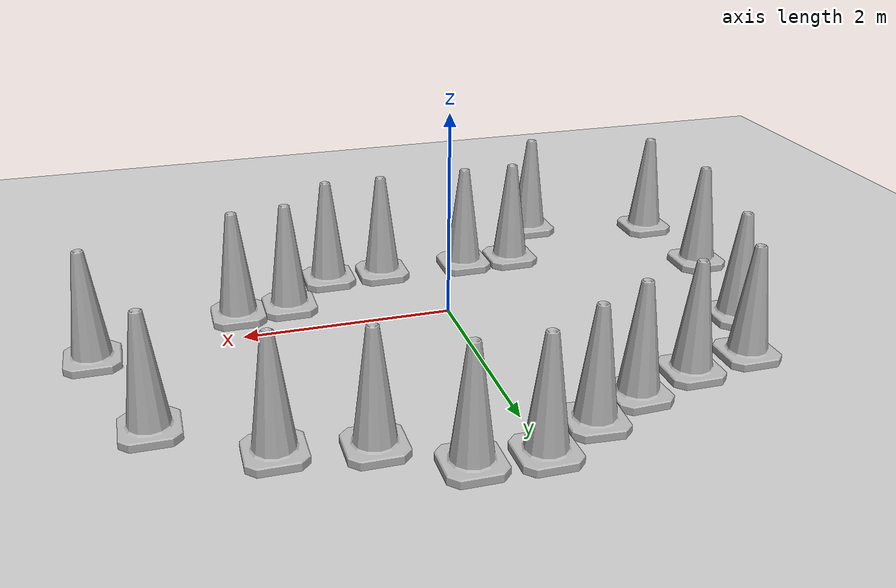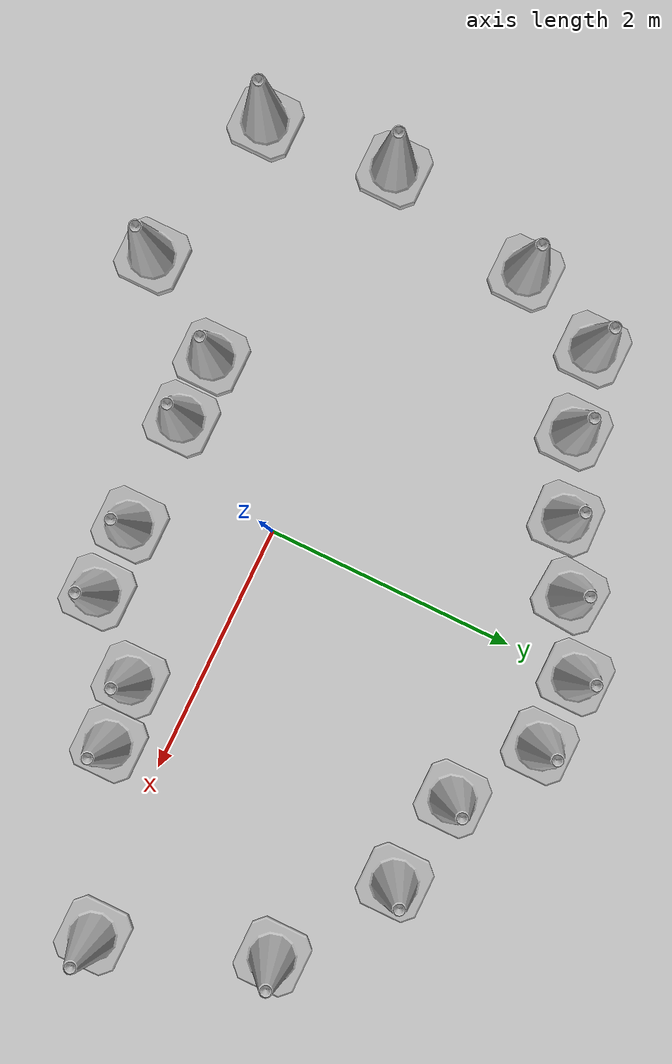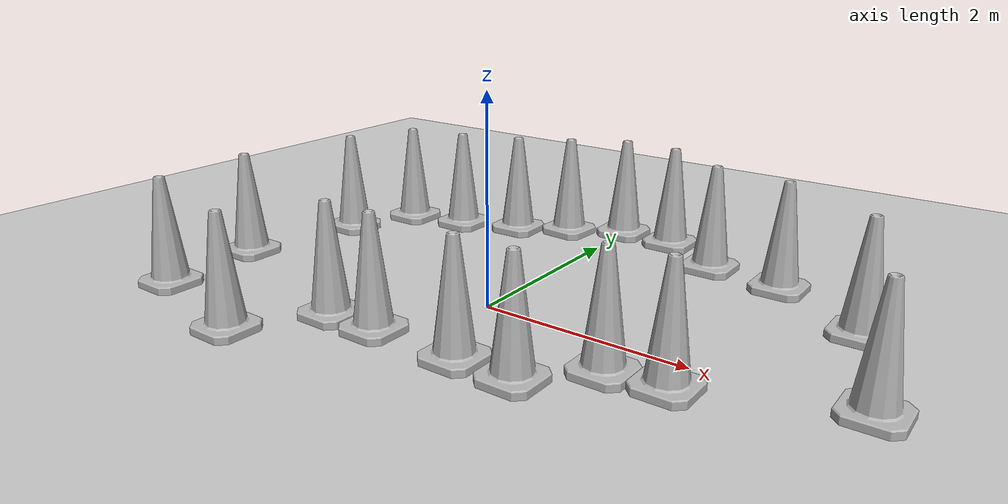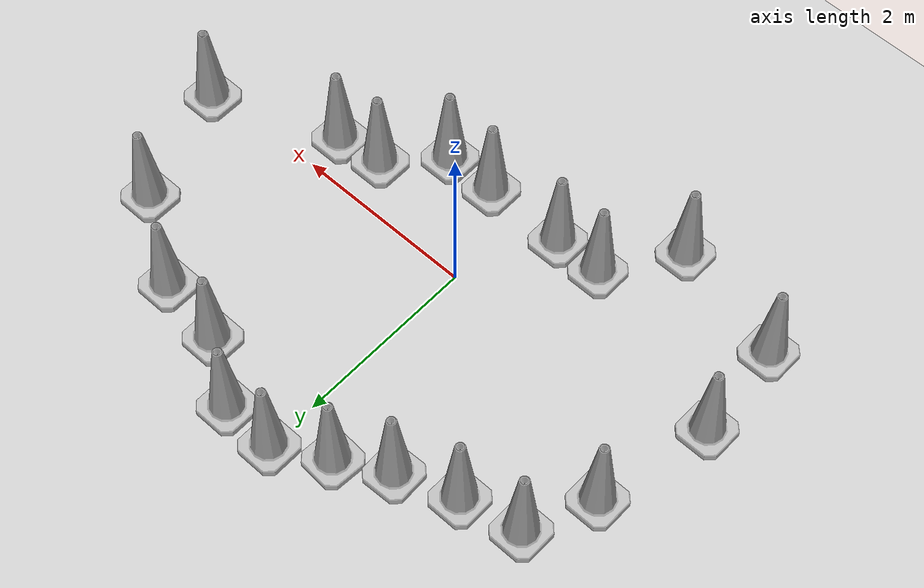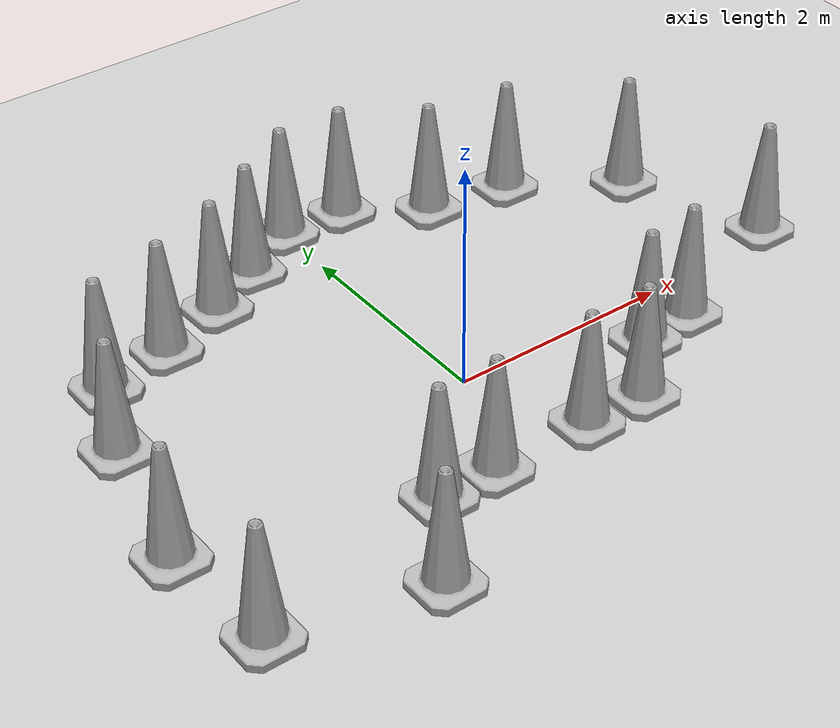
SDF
<sdf version="1.7">
 <world name="default">
  <light name="sun" type="directional">
   <pose>0 0 10 0 -0 0</pose>
   <diffuse>0.8 0.8 0.8 1</diffuse>
   <specular>0.2 0.2 0.2 1</specular>
   <attenuation>
    <range>1000</range>
    <constant>0.9</constant>
    <linear>0.01</linear>
    <quadratic>0.001</quadratic>
   </attenuation>
   <direction>-0.5 0.1 -0.9</direction>
   <spot><inner_angle>0</inner_angle><outer_angle>0</outer_angle><falloff>0</falloff></spot>
  </light>
  <model name="ground_plane">
   <static>1</static>
   <link name="link">
    <collision name="collision">
     <geometry><plane><normal>0 0 1</normal><size>100 100</size></plane></geometry>
     <surface>
      <contact><collide_bitmask>65535</collide_bitmask></contact>
      <friction><ode><mu>100</mu><mu2>50</mu2></ode></friction>
     </surface>
    </collision>
    <visual name="visual">
     <cast_shadows>0</cast_shadows>
     <geometry><plane><normal>0 0 1</normal><size>100 100</size></plane></geometry>
     <material>
      <script><uri>file://media/materials/scripts/gazebo.material</uri><name>Gazebo/Grey</name></script>
     </material>
    </visual>
   </link>
  </model>
  <gravity>0 0 -9.8</gravity>
  <magnetic_field>6e-06 2.3e-05 -4.2e-05</magnetic_field>
  <atmosphere type="adiabatic"/>
  <physics type="ode">
   <max_step_size>0.001</max_step_size>
   <real_time_factor>1</real_time_factor>
   <real_time_update_rate>1000</real_time_update_rate>
  </physics>
  <scene><ambient>0.4 0.4 0.4 1</ambient><background>0.7 0.7 0.7 1</background><shadows>1</shadows></scene>
  <audio><device>default</device></audio>
  <spherical_coordinates>
   <surface_model>EARTH_WGS84</surface_model>
   <latitude_deg>0</latitude_deg>
   <longitude_deg>0</longitude_deg>
   <elevation>0</elevation>
   <heading_deg>0</heading_deg>
  </spherical_coordinates>
  <model name="Construction Cone">
   <link name="link">
    <collision name="collision">
     <geometry>
      <mesh><scale>10 10 10</scale><uri>model://construction_cone/meshes/construction_cone.dae</uri></mesh>
     </geometry>
    </collision>
    <visual name="visual">
     <geometry>
      <mesh><scale>10 10 10</scale><uri>model://construction_cone/meshes/construction_cone.dae</uri></mesh>
     </geometry>
    </visual>
    <inertial>
     <inertia><ixx>1</ixx><ixy>0</ixy><ixz>0</ixz><iyy>1</iyy><iyz>0</iyz><izz>1</izz></inertia>
     <mass>1</mass>
    </inertial>
   </link>
   <pose>3.35267 0.113121 -0 0 -0 0</pose>
  </model>
  <model name="Construction Cone_clone">
   <link name="link">
    <collision name="collision">
     <geometry>
      <mesh><scale>10 10 10</scale><uri>model://construction_cone/meshes/construction_cone.dae</uri></mesh>
     </geometry>
    </collision>
    <visual name="visual">
     <geometry>
      <mesh><scale>10 10 10</scale><uri>model://construction_cone/meshes/construction_cone.dae</uri></mesh>
     </geometry>
    </visual>
    <inertial>
     <inertia><ixx>1</ixx><ixy>0</ixy><ixz>0</ixz><iyy>1</iyy><iyz>0</iyz><izz>1</izz></inertia>
     <mass>1</mass>
    </inertial>
   </link>
   <pose>2.90748 1.40769 0 -0 -0 -0</pose>
  </model>
  <model name="Construction Cone_clone_0">
   <link name="link">
    <collision name="collision">
     <geometry>
      <mesh><scale>10 10 10</scale><uri>model://construction_cone/meshes/construction_cone.dae</uri></mesh>
     </geometry>
    </collision>
    <visual name="visual">
     <geometry>
      <mesh><scale>10 10 10</scale><uri>model://construction_cone/meshes/construction_cone.dae</uri></mesh>
     </geometry>
    </visual>
    <inertial>
     <inertia><ixx>1</ixx><ixy>0</ixy><ixz>0</ixz><iyy>1</iyy><iyz>0</iyz><izz>1</izz></inertia>
     <mass>1</mass>
    </inertial>
   </link>
   <pose>1.23937 2.12251 -0 0 -0 0</pose>
  </model>
  <model name="Construction Cone_clone_0_clone">
   <link name="link">
    <collision name="collision">
     <geometry>
      <mesh><scale>10 10 10</scale><uri>model://construction_cone/meshes/construction_cone.dae</uri></mesh>
     </geometry>
    </collision>
    <visual name="visual">
     <geometry>
      <mesh><scale>10 10 10</scale><uri>model://construction_cone/meshes/construction_cone.dae</uri></mesh>
     </geometry>
    </visual>
    <inertial>
     <inertia><ixx>1</ixx><ixy>0</ixy><ixz>0</ixz><iyy>1</iyy><iyz>0</iyz><izz>1</izz></inertia>
     <mass>1</mass>
    </inertial>
   </link>
   <pose>-0.542295 2.26451 -0 0 0 -0.072143</pose>
  </model>
  <model name="Construction Cone_clone_0_clone_0">
   <link name="link">
    <collision name="collision">
     <geometry>
      <mesh><scale>10 10 10</scale><uri>model://construction_cone/meshes/construction_cone.dae</uri></mesh>
     </geometry>
    </collision>
    <visual name="visual">
     <geometry>
      <mesh><scale>10 10 10</scale><uri>model://construction_cone/meshes/construction_cone.dae</uri></mesh>
     </geometry>
    </visual>
    <inertial>
     <inertia><ixx>1</ixx><ixy>0</ixy><ixz>0</ixz><iyy>1</iyy><iyz>0</iyz><izz>1</izz></inertia>
     <mass>1</mass>
    </inertial>
   </link>
   <pose>-1.68547 1.75088 0 -0 -0 -0</pose>
  </model>
  <model name="Construction Cone_clone_0_clone_1">
   <link name="link">
    <collision name="collision">
     <geometry>
      <mesh><scale>10 10 10</scale><uri>model://construction_cone/meshes/construction_cone.dae</uri></mesh>
     </geometry>
    </collision>
    <visual name="visual">
     <geometry>
      <mesh><scale>10 10 10</scale><uri>model://construction_cone/meshes/construction_cone.dae</uri></mesh>
     </geometry>
    </visual>
    <inertial>
     <inertia><ixx>1</ixx><ixy>0</ixy><ixz>0</ixz><iyy>1</iyy><iyz>0</iyz><izz>1</izz></inertia>
     <mass>1</mass>
    </inertial>
   </link>
   <pose>-2.63227 0.893092 -0 0 -0 0</pose>
  </model>
  <model name="Construction Cone_clone_0_clone_2">
   <link name="link">
    <collision name="collision">
     <geometry>
      <mesh><scale>10 10 10</scale><uri>model://construction_cone/meshes/construction_cone.dae</uri></mesh>
     </geometry>
    </collision>
    <visual name="visual">
     <geometry>
      <mesh><scale>10 10 10</scale><uri>model://construction_cone/meshes/construction_cone.dae</uri></mesh>
     </geometry>
    </visual>
    <inertial>
     <inertia><ixx>1</ixx><ixy>0</ixy><ixz>0</ixz><iyy>1</iyy><iyz>0</iyz><izz>1</izz></inertia>
     <mass>1</mass>
    </inertial>
   </link>
   <pose>-2.91268 -0.364931 -0 0 -0 0</pose>
  </model>
  <model name="Construction Cone_clone_0_clone_3">
   <link name="link">
    <collision name="collision">
     <geometry>
      <mesh><scale>10 10 10</scale><uri>model://construction_cone/meshes/construction_cone.dae</uri></mesh>
     </geometry>
    </collision>
    <visual name="visual">
     <geometry>
      <mesh><scale>10 10 10</scale><uri>model://construction_cone/meshes/construction_cone.dae</uri></mesh>
     </geometry>
    </visual>
    <inertial>
     <inertia><ixx>1</ixx><ixy>0</ixy><ixz>0</ixz><iyy>1</iyy><iyz>0</iyz><izz>1</izz></inertia>
     <mass>1</mass>
    </inertial>
   </link>
   <pose>-2.81526 -1.42032 -0 0 -1e-06 0</pose>
  </model>
  <model name="Construction Cone_clone_0_clone_4">
   <link name="link">
    <collision name="collision">
     <geometry>
      <mesh><scale>10 10 10</scale><uri>model://construction_cone/meshes/construction_cone.dae</uri></mesh>
     </geometry>
    </collision>
    <visual name="visual">
     <geometry>
      <mesh><scale>10 10 10</scale><uri>model://construction_cone/meshes/construction_cone.dae</uri></mesh>
     </geometry>
    </visual>
    <inertial>
     <inertia><ixx>1</ixx><ixy>0</ixy><ixz>0</ixz><iyy>1</iyy><iyz>0</iyz><izz>1</izz></inertia>
     <mass>1</mass>
    </inertial>
   </link>
   <pose>0.428536 -1 -0 0 -1e-06 0</pose>
  </model>
  <model name="Construction Cone_clone_0_clone_5">
   <link name="link">
    <collision name="collision">
     <geometry>
      <mesh><scale>10 10 10</scale><uri>model://construction_cone/meshes/construction_cone.dae</uri></mesh>
     </geometry>
    </collision>
    <visual name="visual">
     <geometry>
      <mesh><scale>10 10 10</scale><uri>model://construction_cone/meshes/construction_cone.dae</uri></mesh>
     </geometry>
    </visual>
    <inertial>
     <inertia><ixx>1</ixx><ixy>0</ixy><ixz>0</ixz><iyy>1</iyy><iyz>0</iyz><izz>1</izz></inertia>
     <mass>1</mass>
    </inertial>
   </link>
   <pose>-0.472313 -1 -1e-05 0 -0 0</pose>
  </model>
  <model name="Construction Cone_clone_0_clone_6">
   <link name="link">
    <collision name="collision">
     <geometry>
      <mesh><scale>10 10 10</scale><uri>model://construction_cone/meshes/construction_cone.dae</uri></mesh>
     </geometry>
    </collision>
    <visual name="visual">
     <geometry>
      <mesh><scale>10 10 10</scale><uri>model://construction_cone/meshes/construction_cone.dae</uri></mesh>
     </geometry>
    </visual>
    <inertial>
     <inertia><ixx>1</ixx><ixy>0</ixy><ixz>0</ixz><iyy>1</iyy><iyz>0</iyz><izz>1</izz></inertia>
     <mass>1</mass>
    </inertial>
   </link>
   <pose>-1 -1 -0 0 -0 0</pose>
  </model>
  <model name="Construction Cone_clone_0_clone_7">
   <link name="link">
    <collision name="collision">
     <geometry>
      <mesh><scale>10 10 10</scale><uri>model://construction_cone/meshes/construction_cone.dae</uri></mesh>
     </geometry>
    </collision>
    <visual name="visual">
     <geometry>
      <mesh><scale>10 10 10</scale><uri>model://construction_cone/meshes/construction_cone.dae</uri></mesh>
     </geometry>
    </visual>
    <inertial>
     <inertia><ixx>1</ixx><ixy>0</ixy><ixz>0</ixz><iyy>1</iyy><iyz>0</iyz><izz>1</izz></inertia>
     <mass>1</mass>
    </inertial>
   </link>
   <pose>-1.50571 -1.74952 -0 0 -0 0</pose>
  </model>
  <model name="Construction Cone_clone_0_clone_8">
   <link name="link">
    <collision name="collision">
     <geometry>
      <mesh><scale>10 10 10</scale><uri>model://construction_cone/meshes/construction_cone.dae</uri></mesh>
     </geometry>
    </collision>
    <visual name="visual">
     <geometry>
      <mesh><scale>10 10 10</scale><uri>model://construction_cone/meshes/construction_cone.dae</uri></mesh>
     </geometry>
    </visual>
    <inertial>
     <inertia><ixx>1</ixx><ixy>0</ixy><ixz>0</ixz><iyy>1</iyy><iyz>0</iyz><izz>1</izz></inertia>
     <mass>1</mass>
    </inertial>
   </link>
   <pose>1 -1 -1e-05 -1e-06 0 0</pose>
  </model>
  <model name="Construction Cone_clone_0_clone_9">
   <link name="link">
    <collision name="collision">
     <geometry>
      <mesh><scale>10 10 10</scale><uri>model://construction_cone/meshes/construction_cone.dae</uri></mesh>
     </geometry>
    </collision>
    <visual name="visual">
     <geometry>
      <mesh><scale>10 10 10</scale><uri>model://construction_cone/meshes/construction_cone.dae</uri></mesh>
     </geometry>
    </visual>
    <inertial>
     <inertia><ixx>1</ixx><ixy>0</ixy><ixz>0</ixz><iyy>1</iyy><iyz>0</iyz><izz>1</izz></inertia>
     <mass>1</mass>
    </inertial>
   </link>
   <pose>2 -0.414213 -0 0 -0 0</pose>
  </model>
  <model name="Construction Cone_clone_0_clone_10">
   <link name="link">
    <collision name="collision">
     <geometry>
      <mesh><scale>10 10 10</scale><uri>model://construction_cone/meshes/construction_cone.dae</uri></mesh>
     </geometry>
    </collision>
    <visual name="visual">
     <geometry>
      <mesh><scale>10 10 10</scale><uri>model://construction_cone/meshes/construction_cone.dae</uri></mesh>
     </geometry>
    </visual>
    <inertial>
     <inertia><ixx>1</ixx><ixy>0</ixy><ixz>0</ixz><iyy>1</iyy><iyz>0</iyz><izz>1</izz></inertia>
     <mass>1</mass>
    </inertial>
   </link>
   <pose>1.49206 -0.479442 -1e-05 -1e-06 0 0</pose>
  </model>
  <model name="Construction Cone_clone_0_clone_11">
   <link name="link">
    <collision name="collision">
     <geometry>
      <mesh><scale>10 10 10</scale><uri>model://construction_cone/meshes/construction_cone.dae</uri></mesh>
     </geometry>
    </collision>
    <visual name="visual">
     <geometry>
      <mesh><scale>10 10 10</scale><uri>model://construction_cone/meshes/construction_cone.dae</uri></mesh>
     </geometry>
    </visual>
    <inertial>
     <inertia><ixx>1</ixx><ixy>0</ixy><ixz>0</ixz><iyy>1</iyy><iyz>0</iyz><izz>1</izz></inertia>
     <mass>1</mass>
    </inertial>
   </link>
   <pose>0.589626 2.54802 -0 -0 -0 -0</pose>
  </model>
  <model name="Construction Cone_clone_0_clone_12">
   <link name="link">
    <collision name="collision">
     <geometry>
      <mesh><scale>10 10 10</scale><uri>model://construction_cone/meshes/construction_cone.dae</uri></mesh>
     </geometry>
    </collision>
    <visual name="visual">
     <geometry>
      <mesh><scale>10 10 10</scale><uri>model://construction_cone/meshes/construction_cone.dae</uri></mesh>
     </geometry>
    </visual>
    <inertial>
     <inertia><ixx>1</ixx><ixy>0</ixy><ixz>0</ixz><iyy>1</iyy><iyz>0</iyz><izz>1</izz></inertia>
     <mass>1</mass>
    </inertial>
   </link>
   <pose>2 2 0 -0 -0 -0</pose>
  </model>
  <model name="Construction Cone_clone_0_clone_13">
   <link name="link">
    <collision name="collision">
     <geometry>
      <mesh><scale>10 10 10</scale><uri>model://construction_cone/meshes/construction_cone.dae</uri></mesh>
     </geometry>
    </collision>
    <visual name="visual">
     <geometry>
      <mesh><scale>10 10 10</scale><uri>model://construction_cone/meshes/construction_cone.dae</uri></mesh>
     </geometry>
    </visual>
    <inertial>
     <inertia><ixx>1</ixx><ixy>0</ixy><ixz>0</ixz><iyy>1</iyy><iyz>0</iyz><izz>1</izz></inertia>
     <mass>1</mass>
    </inertial>
   </link>
   <pose>-1.06021 1.9793 -0 0 -0 0.038977</pose>
  </model>
  <model name="Construction Cone_clone_0_clone_14">
   <link name="link">
    <collision name="collision">
     <geometry>
      <mesh><scale>10 10 10</scale><uri>model://construction_cone/meshes/construction_cone.dae</uri></mesh>
     </geometry>
    </collision>
    <visual name="visual">
     <geometry>
      <mesh><scale>10 10 10</scale><uri>model://construction_cone/meshes/construction_cone.dae</uri></mesh>
     </geometry>
    </visual>
    <inertial>
     <inertia><ixx>1</ixx><ixy>0</ixy><ixz>0</ixz><iyy>1</iyy><iyz>0</iyz><izz>1</izz></inertia>
     <mass>1</mass>
    </inertial>
   </link>
   <pose>0 2.56923 -0 0 -0 0</pose>
  </model>
  <model name="Construction Cone_clone_0_clone_15">
   <link name="link">
    <collision name="collision">
     <geometry>
      <mesh><scale>10 10 10</scale><uri>model://construction_cone/meshes/construction_cone.dae</uri></mesh>
     </geometry>
    </collision>
    <visual name="visual">
     <geometry>
      <mesh><scale>10 10 10</scale><uri>model://construction_cone/meshes/construction_cone.dae</uri></mesh>
     </geometry>
    </visual>
    <inertial>
     <inertia><ixx>1</ixx><ixy>0</ixy><ixz>0</ixz><iyy>1</iyy><iyz>0</iyz><izz>1</izz></inertia>
     <mass>1</mass>
    </inertial>
   </link>
   <pose>-2.3231 1.60781 -0 0 -0 0</pose>
  </model>
 </world>
</sdf>
